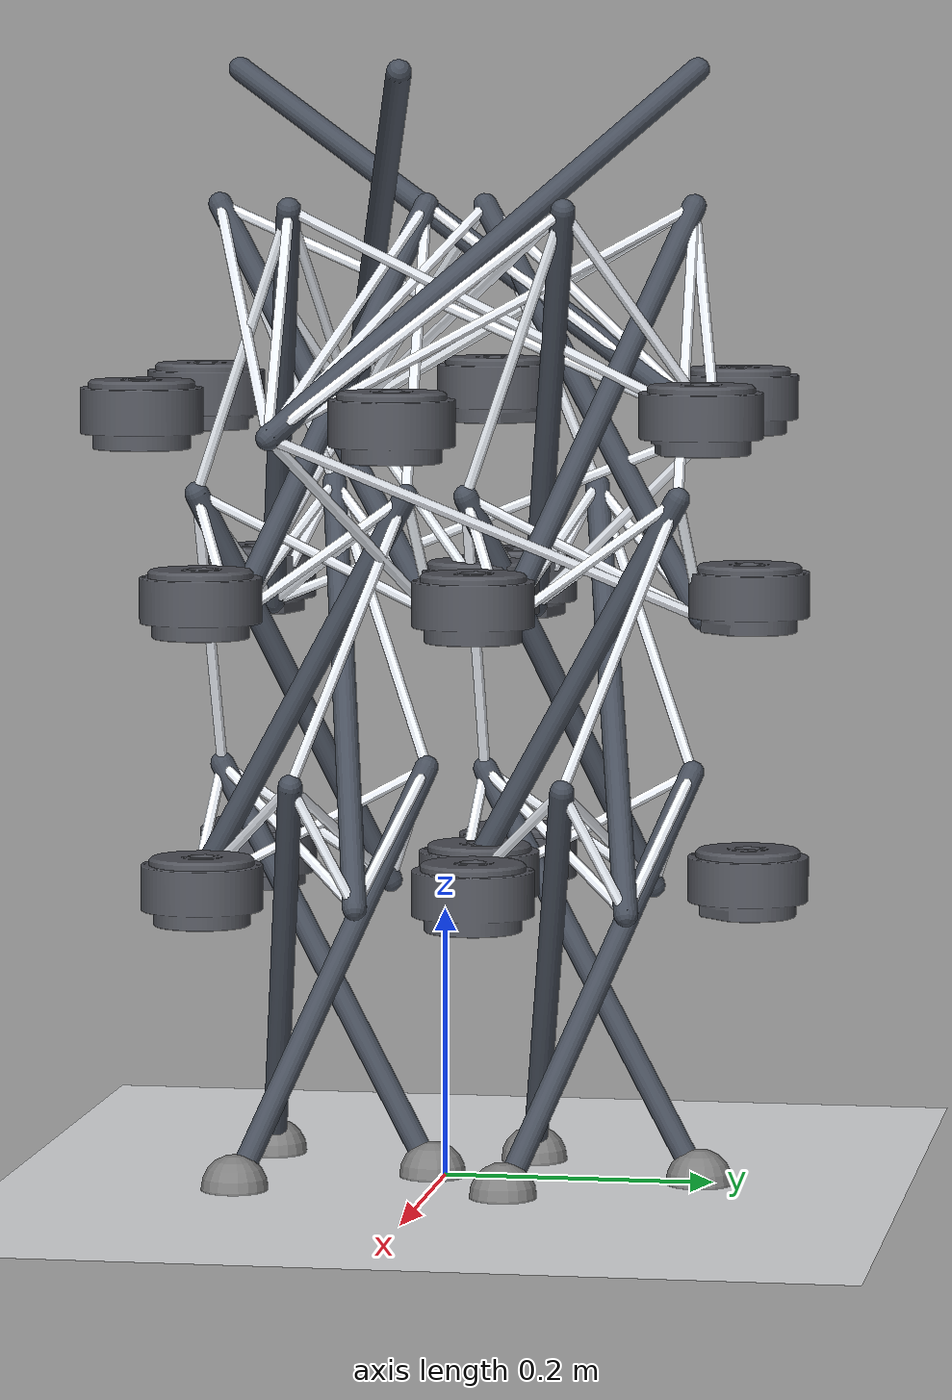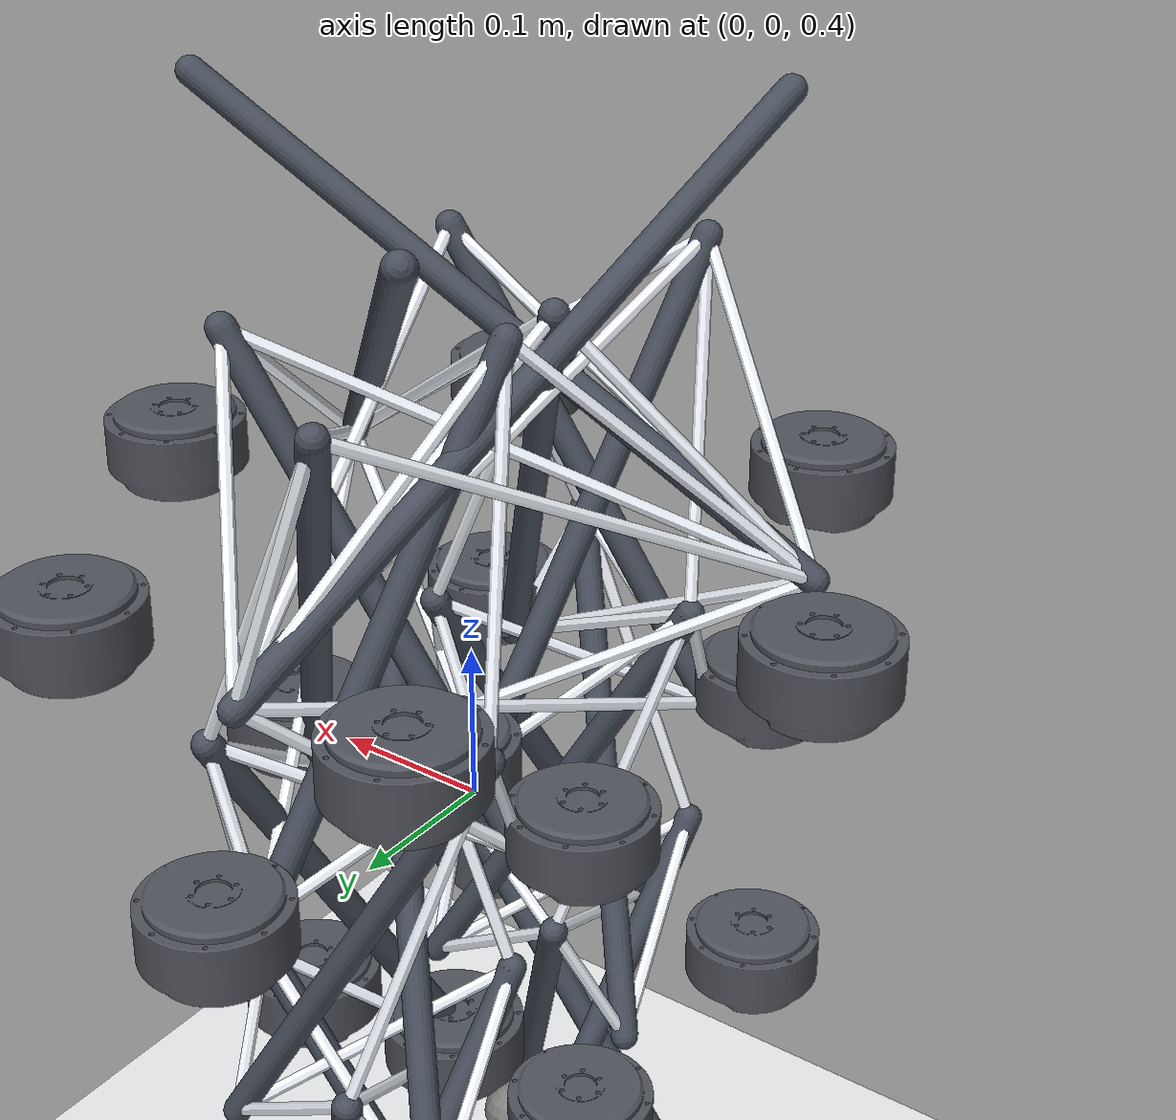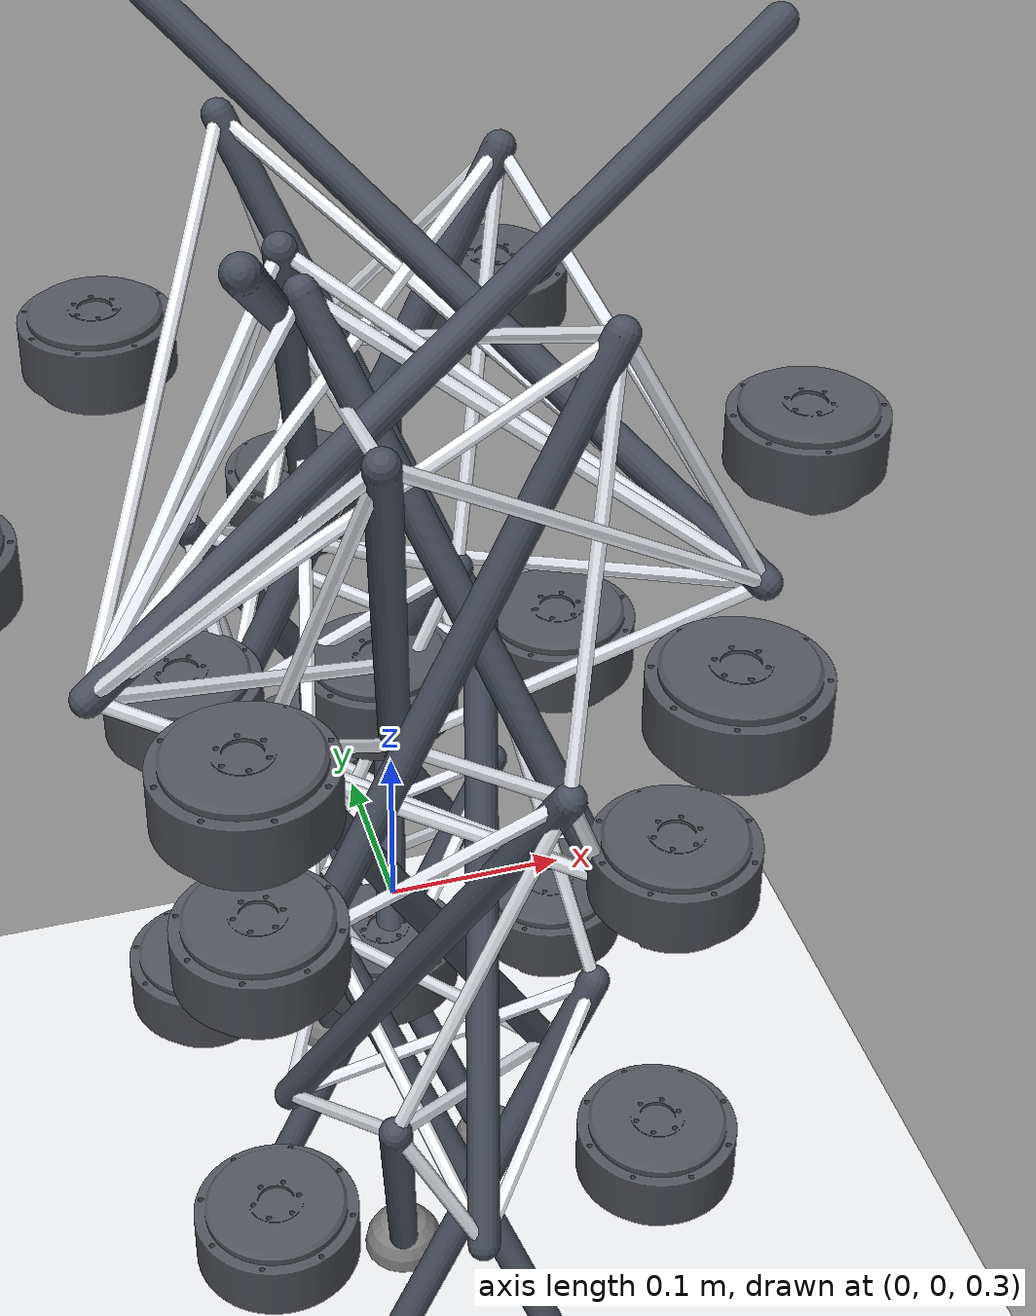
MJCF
<mujoco model="rigid_cage_walker">
  <compiler angle="radian" autolimits="true" meshdir="assets"/>
  <option timestep="0.0002" integrator="implicitfast" solver="Newton"
          iterations="50"/>
  <visual><global offwidth="1600" offheight="1200"/></visual>
  <asset>
    <mesh name="ak70" file="ak70_10.stl"/>
    <mesh name="ak60" file="ak60_6.stl"/>
    <texture name="grid" type="2d" builtin="checker" rgb1="0.88 0.89 0.90"
             rgb2="0.96 0.96 0.97" width="512" height="512"/>
    <material name="grid" texture="grid" texrepeat="10 10"/>
  </asset>
  <worldbody>
    <light pos="1.2 -1.2 2.6" dir="-0.4 0.4 -1" directional="true"/>
    <geom name="floor" type="plane" size="6 6 0.1" material="grid"
          contype="1" conaffinity="1" friction="1.2 0.01 0.001"/>

    <body name="foot_l" pos="-0.00000 0.10000 0.15000">
      <freejoint/>
            <geom type="capsule" size="0.009" mass="0.001" contype="0" conaffinity="0" rgba="0.28 0.31 0.36 1" fromto="0.00000 0.09000 -0.15000 -0.04527 -0.07778 0.15000"/>
      <geom type="capsule" size="0.009" mass="0.001" contype="0" conaffinity="0" rgba="0.28 0.31 0.36 1" fromto="-0.07794 -0.04500 -0.15000 0.09000 -0.00031 0.15000"/>
      <geom type="capsule" size="0.009" mass="0.001" contype="0" conaffinity="0" rgba="0.28 0.31 0.36 1" fromto="0.07794 -0.04500 -0.15000 -0.04473 0.07810 0.15000"/>
      <inertial pos="0.00000 0.00000 0.00000" mass="0.4000" fullinertia="0.004620 0.004620 0.003240 0.000000 0.000000 0.000000"/>
      <geom name="pad_foot_l_0" type="sphere" size="0.025" mass="0.04" contype="1" conaffinity="1" friction="1.2 0.01 0.001" pos="0.00000 0.09000 -0.15000"/>
      <geom name="pad_foot_l_1" type="sphere" size="0.025" mass="0.04" contype="1" conaffinity="1" friction="1.2 0.01 0.001" pos="-0.07794 -0.04500 -0.15000"/>
      <geom name="pad_foot_l_2" type="sphere" size="0.025" mass="0.04" contype="1" conaffinity="1" friction="1.2 0.01 0.001" pos="0.07794 -0.04500 -0.15000"/>
      <site name="foot_l_b0" pos="0.00000 0.09000 -0.15000" size="0.006"/>
      <site name="foot_l_b1" pos="-0.07794 -0.04500 -0.15000" size="0.006"/>
      <site name="foot_l_b2" pos="0.07794 -0.04500 -0.15000" size="0.006"/>
      <site name="foot_l_t0" pos="-0.04473 0.07810 0.15000" size="0.006"/>
      <site name="foot_l_t1" pos="-0.04527 -0.07778 0.15000" size="0.006"/>
      <site name="foot_l_t2" pos="0.09000 -0.00031 0.15000" size="0.006"/>
    </body>
    <body name="shank_l" pos="0.00000 0.10000 0.36000">
      <freejoint/>
            <geom type="capsule" size="0.009" mass="0.001" contype="0" conaffinity="0" rgba="0.28 0.31 0.36 1" fromto="-0.07794 0.04500 -0.15000 0.04473 -0.07810 0.15000"/>
      <geom type="capsule" size="0.009" mass="0.001" contype="0" conaffinity="0" rgba="0.28 0.31 0.36 1" fromto="-0.00000 -0.09000 -0.15000 0.04527 0.07778 0.15000"/>
      <geom type="capsule" size="0.009" mass="0.001" contype="0" conaffinity="0" rgba="0.28 0.31 0.36 1" fromto="0.07794 0.04500 -0.15000 -0.09000 0.00031 0.15000"/>
      <inertial pos="0.00000 0.00000 -0.12037" mass="3.2300" fullinertia="0.032230 0.032230 0.047835 -0.000000 0.000000 -0.000000"/>
      <geom type="mesh" mesh="ak70" mass="0" contype="0" conaffinity="0" rgba="0.32 0.33 0.36 1" pos="-0.10825 -0.06250 -0.13500" xyaxes="-0.50000 0.86603 -0.00000 -0.86603 -0.50000 -0.00000"/>
      <geom type="mesh" mesh="ak70" mass="0" contype="0" conaffinity="0" rgba="0.32 0.33 0.36 1" pos="-0.00000 0.12500 -0.13500" xyaxes="1.00000 0.00000 0.00000 -0.00000 1.00000 -0.00000"/>
      <geom type="mesh" mesh="ak70" mass="0" contype="0" conaffinity="0" rgba="0.32 0.33 0.36 1" pos="0.10825 -0.06250 -0.13500" xyaxes="-0.50000 -0.86603 -0.00000 0.86603 -0.50000 0.00000"/>
      <site name="shank_l_b0" pos="-0.07794 0.04500 -0.15000" size="0.006"/>
      <site name="shank_l_b1" pos="-0.00000 -0.09000 -0.15000" size="0.006"/>
      <site name="shank_l_b2" pos="0.07794 0.04500 -0.15000" size="0.006"/>
      <site name="shank_l_t0" pos="-0.09000 0.00031 0.15000" size="0.006"/>
      <site name="shank_l_t1" pos="0.04473 -0.07810 0.15000" size="0.006"/>
      <site name="shank_l_t2" pos="0.04527 0.07778 0.15000" size="0.006"/>
    </body>
    <body name="thigh_l" pos="0.00000 0.10000 0.57000">
      <freejoint/>
            <geom type="capsule" size="0.009" mass="0.001" contype="0" conaffinity="0" rgba="0.28 0.31 0.36 1" fromto="-0.07794 -0.04500 -0.15000 0.09000 -0.00031 0.15000"/>
      <geom type="capsule" size="0.009" mass="0.001" contype="0" conaffinity="0" rgba="0.28 0.31 0.36 1" fromto="0.07794 -0.04500 -0.15000 -0.04473 0.07810 0.15000"/>
      <geom type="capsule" size="0.009" mass="0.001" contype="0" conaffinity="0" rgba="0.28 0.31 0.36 1" fromto="0.00000 0.09000 -0.15000 -0.04527 -0.07778 0.15000"/>
      <inertial pos="0.00000 -0.00000 -0.11026" mass="1.9100" fullinertia="0.021440 0.021440 0.027210 -0.000000 0.000000 0.000000"/>
      <geom type="mesh" mesh="ak70" mass="0" contype="0" conaffinity="0" rgba="0.32 0.33 0.36 1" pos="-0.10825 -0.06250 -0.13500" xyaxes="-0.50000 0.86603 -0.00000 -0.86603 -0.50000 0.00000"/>
      <geom type="mesh" mesh="ak70" mass="0" contype="0" conaffinity="0" rgba="0.32 0.33 0.36 1" pos="-0.00000 0.12500 -0.13500" xyaxes="1.00000 0.00000 -0.00000 -0.00000 1.00000 -0.00000"/>
      <geom type="mesh" mesh="ak70" mass="0" contype="0" conaffinity="0" rgba="0.32 0.33 0.36 1" pos="0.10825 -0.06250 -0.13500" xyaxes="-0.50000 -0.86603 0.00000 0.86603 -0.50000 0.00000"/>
      <site name="thigh_l_b0" pos="-0.07794 -0.04500 -0.15000" size="0.006"/>
      <site name="thigh_l_b1" pos="0.07794 -0.04500 -0.15000" size="0.006"/>
      <site name="thigh_l_b2" pos="0.00000 0.09000 -0.15000" size="0.006"/>
      <site name="thigh_l_t0" pos="-0.04527 -0.07778 0.15000" size="0.006"/>
      <site name="thigh_l_t1" pos="0.09000 -0.00031 0.15000" size="0.006"/>
      <site name="thigh_l_t2" pos="-0.04473 0.07810 0.15000" size="0.006"/>
    </body>
    <body name="foot_r" pos="-0.00000 -0.10000 0.15000">
      <freejoint/>
            <geom type="capsule" size="0.009" mass="0.001" contype="0" conaffinity="0" rgba="0.28 0.31 0.36 1" fromto="0.00000 0.09000 -0.15000 -0.04527 -0.07778 0.15000"/>
      <geom type="capsule" size="0.009" mass="0.001" contype="0" conaffinity="0" rgba="0.28 0.31 0.36 1" fromto="-0.07794 -0.04500 -0.15000 0.09000 -0.00031 0.15000"/>
      <geom type="capsule" size="0.009" mass="0.001" contype="0" conaffinity="0" rgba="0.28 0.31 0.36 1" fromto="0.07794 -0.04500 -0.15000 -0.04473 0.07810 0.15000"/>
      <inertial pos="0.00000 0.00000 0.00000" mass="0.4000" fullinertia="0.004620 0.004620 0.003240 0.000000 0.000000 0.000000"/>
      <geom name="pad_foot_r_0" type="sphere" size="0.025" mass="0.04" contype="1" conaffinity="1" friction="1.2 0.01 0.001" pos="0.00000 0.09000 -0.15000"/>
      <geom name="pad_foot_r_1" type="sphere" size="0.025" mass="0.04" contype="1" conaffinity="1" friction="1.2 0.01 0.001" pos="-0.07794 -0.04500 -0.15000"/>
      <geom name="pad_foot_r_2" type="sphere" size="0.025" mass="0.04" contype="1" conaffinity="1" friction="1.2 0.01 0.001" pos="0.07794 -0.04500 -0.15000"/>
      <site name="foot_r_b0" pos="0.00000 0.09000 -0.15000" size="0.006"/>
      <site name="foot_r_b1" pos="-0.07794 -0.04500 -0.15000" size="0.006"/>
      <site name="foot_r_b2" pos="0.07794 -0.04500 -0.15000" size="0.006"/>
      <site name="foot_r_t0" pos="-0.04473 0.07810 0.15000" size="0.006"/>
      <site name="foot_r_t1" pos="-0.04527 -0.07778 0.15000" size="0.006"/>
      <site name="foot_r_t2" pos="0.09000 -0.00031 0.15000" size="0.006"/>
    </body>
    <body name="shank_r" pos="0.00000 -0.10000 0.36000">
      <freejoint/>
            <geom type="capsule" size="0.009" mass="0.001" contype="0" conaffinity="0" rgba="0.28 0.31 0.36 1" fromto="-0.07794 0.04500 -0.15000 0.04473 -0.07810 0.15000"/>
      <geom type="capsule" size="0.009" mass="0.001" contype="0" conaffinity="0" rgba="0.28 0.31 0.36 1" fromto="-0.00000 -0.09000 -0.15000 0.04527 0.07778 0.15000"/>
      <geom type="capsule" size="0.009" mass="0.001" contype="0" conaffinity="0" rgba="0.28 0.31 0.36 1" fromto="0.07794 0.04500 -0.15000 -0.09000 0.00031 0.15000"/>
      <inertial pos="0.00000 0.00000 -0.12037" mass="3.2300" fullinertia="0.032230 0.032230 0.047835 -0.000000 0.000000 0.000000"/>
      <geom type="mesh" mesh="ak70" mass="0" contype="0" conaffinity="0" rgba="0.32 0.33 0.36 1" pos="-0.10825 -0.06250 -0.13500" xyaxes="-0.50000 0.86603 -0.00000 -0.86603 -0.50000 -0.00000"/>
      <geom type="mesh" mesh="ak70" mass="0" contype="0" conaffinity="0" rgba="0.32 0.33 0.36 1" pos="-0.00000 0.12500 -0.13500" xyaxes="1.00000 0.00000 0.00000 -0.00000 1.00000 -0.00000"/>
      <geom type="mesh" mesh="ak70" mass="0" contype="0" conaffinity="0" rgba="0.32 0.33 0.36 1" pos="0.10825 -0.06250 -0.13500" xyaxes="-0.50000 -0.86603 -0.00000 0.86603 -0.50000 0.00000"/>
      <site name="shank_r_b0" pos="-0.07794 0.04500 -0.15000" size="0.006"/>
      <site name="shank_r_b1" pos="-0.00000 -0.09000 -0.15000" size="0.006"/>
      <site name="shank_r_b2" pos="0.07794 0.04500 -0.15000" size="0.006"/>
      <site name="shank_r_t0" pos="-0.09000 0.00031 0.15000" size="0.006"/>
      <site name="shank_r_t1" pos="0.04473 -0.07810 0.15000" size="0.006"/>
      <site name="shank_r_t2" pos="0.04527 0.07778 0.15000" size="0.006"/>
    </body>
    <body name="thigh_r" pos="0.00000 -0.10000 0.57000">
      <freejoint/>
            <geom type="capsule" size="0.009" mass="0.001" contype="0" conaffinity="0" rgba="0.28 0.31 0.36 1" fromto="-0.07794 -0.04500 -0.15000 0.09000 -0.00031 0.15000"/>
      <geom type="capsule" size="0.009" mass="0.001" contype="0" conaffinity="0" rgba="0.28 0.31 0.36 1" fromto="0.07794 -0.04500 -0.15000 -0.04473 0.07810 0.15000"/>
      <geom type="capsule" size="0.009" mass="0.001" contype="0" conaffinity="0" rgba="0.28 0.31 0.36 1" fromto="0.00000 0.09000 -0.15000 -0.04527 -0.07778 0.15000"/>
      <inertial pos="0.00000 0.00000 -0.11026" mass="1.9100" fullinertia="0.021440 0.021440 0.027210 -0.000000 0.000000 0.000000"/>
      <geom type="mesh" mesh="ak70" mass="0" contype="0" conaffinity="0" rgba="0.32 0.33 0.36 1" pos="-0.10825 -0.06250 -0.13500" xyaxes="-0.50000 0.86603 0.00000 -0.86603 -0.50000 0.00000"/>
      <geom type="mesh" mesh="ak70" mass="0" contype="0" conaffinity="0" rgba="0.32 0.33 0.36 1" pos="-0.00000 0.12500 -0.13500" xyaxes="1.00000 0.00000 -0.00000 -0.00000 1.00000 0.00000"/>
      <geom type="mesh" mesh="ak70" mass="0" contype="0" conaffinity="0" rgba="0.32 0.33 0.36 1" pos="0.10825 -0.06250 -0.13500" xyaxes="-0.50000 -0.86603 0.00000 0.86603 -0.50000 -0.00000"/>
      <site name="thigh_r_b0" pos="-0.07794 -0.04500 -0.15000" size="0.006"/>
      <site name="thigh_r_b1" pos="0.07794 -0.04500 -0.15000" size="0.006"/>
      <site name="thigh_r_b2" pos="0.00000 0.09000 -0.15000" size="0.006"/>
      <site name="thigh_r_t0" pos="-0.04527 -0.07778 0.15000" size="0.006"/>
      <site name="thigh_r_t1" pos="0.09000 -0.00031 0.15000" size="0.006"/>
      <site name="thigh_r_t2" pos="-0.04473 0.07810 0.15000" size="0.006"/>
    </body>
    <body name="pelvis" pos="-0.00000 -0.00000 0.69000">
      <freejoint/>
            <geom type="capsule" size="0.009" mass="0.001" contype="0" conaffinity="0" rgba="0.28 0.31 0.36 1" fromto="0.00000 0.20000 -0.13000 -0.10060 -0.17285 0.13000"/>
      <geom type="capsule" size="0.009" mass="0.001" contype="0" conaffinity="0" rgba="0.28 0.31 0.36 1" fromto="-0.17321 -0.10000 -0.13000 0.20000 -0.00070 0.13000"/>
      <geom type="capsule" size="0.009" mass="0.001" contype="0" conaffinity="0" rgba="0.28 0.31 0.36 1" fromto="0.17321 -0.10000 -0.13000 -0.09939 0.17355 0.13000"/>
      <inertial pos="-0.00000 -0.00000 -0.02265" mass="16.1200" fullinertia="0.453828 0.453828 0.692302 -0.000000 -0.000000 -0.000000"/>
      <geom type="mesh" mesh="ak70" mass="0" contype="0" conaffinity="0" rgba="0.32 0.33 0.36 1" pos="-0.11750 -0.20352 -0.11700" xyaxes="-0.86603 0.50000 0.00000 -0.50000 -0.86603 0.00000"/>
      <geom type="mesh" mesh="ak70" mass="0" contype="0" conaffinity="0" rgba="0.32 0.33 0.36 1" pos="-0.23500 -0.00000 -0.11700" xyaxes="-0.00000 1.00000 -0.00000 -1.00000 -0.00000 0.00000"/>
      <geom type="mesh" mesh="ak70" mass="0" contype="0" conaffinity="0" rgba="0.32 0.33 0.36 1" pos="-0.11750 0.20352 -0.11700" xyaxes="0.86603 0.50000 -0.00000 -0.50000 0.86603 -0.00000"/>
      <geom type="mesh" mesh="ak70" mass="0" contype="0" conaffinity="0" rgba="0.32 0.33 0.36 1" pos="0.11750 0.20352 -0.11700" xyaxes="0.86603 -0.50000 -0.00000 0.50000 0.86603 -0.00000"/>
      <geom type="mesh" mesh="ak70" mass="0" contype="0" conaffinity="0" rgba="0.32 0.33 0.36 1" pos="0.23500 0.00000 -0.11700" xyaxes="0.00000 -1.00000 0.00000 1.00000 0.00000 -0.00000"/>
      <geom type="mesh" mesh="ak70" mass="0" contype="0" conaffinity="0" rgba="0.32 0.33 0.36 1" pos="0.11750 -0.20352 -0.11700" xyaxes="-0.86603 -0.50000 0.00000 0.50000 -0.86603 0.00000"/>
      <site name="pelvis_b0" pos="0.00000 0.20000 -0.13000" size="0.006"/>
      <site name="pelvis_b1" pos="-0.17321 -0.10000 -0.13000" size="0.006"/>
      <site name="pelvis_b2" pos="0.17321 -0.10000 -0.13000" size="0.006"/>
      <site name="pelvis_t0" pos="-0.09939 0.17355 0.13000" size="0.006"/>
      <site name="pelvis_t1" pos="-0.10060 -0.17285 0.13000" size="0.006"/>
      <site name="pelvis_t2" pos="0.20000 -0.00070 0.13000" size="0.006"/>
    </body>
  </worldbody>
  <tendon>
    <spatial name="t0" width="0.004" stiffness="40000.0" damping="4.00" springlength="0 0.100896" rgba="0.95 0.97 1 1">
      <site site="foot_l_t0"/>
      <site site="shank_l_b0"/>
    </spatial>
    <spatial name="t1" width="0.004" stiffness="40000.0" damping="4.00" springlength="0 0.228475" rgba="0.95 0.97 1 1">
      <site site="foot_l_t0"/>
      <site site="shank_l_t0"/>
    </spatial>
    <spatial name="t2" width="0.004" stiffness="40000.0" damping="4.00" springlength="0 0.195515" rgba="0.95 0.97 1 1">
      <site site="foot_l_t0"/>
      <site site="shank_l_b1"/>
    </spatial>
    <spatial name="t3" width="0.004" stiffness="40000.0" damping="4.00" springlength="0 0.155086" rgba="0.95 0.97 1 1">
      <site site="foot_l_t0"/>
      <site site="shank_l_b2"/>
    </spatial>
    <spatial name="t4" width="0.004" stiffness="40000.0" damping="4.00" springlength="0 0.100827" rgba="0.95 0.97 1 1">
      <site site="foot_l_t1"/>
      <site site="shank_l_b1"/>
    </spatial>
    <spatial name="t5" width="0.004" stiffness="40000.0" damping="4.00" springlength="0 0.228473" rgba="0.95 0.97 1 1">
      <site site="foot_l_t1"/>
      <site site="shank_l_t1"/>
    </spatial>
    <spatial name="t6" width="0.004" stiffness="40000.0" damping="4.00" springlength="0 0.195494" rgba="0.95 0.97 1 1">
      <site site="foot_l_t1"/>
      <site site="shank_l_b2"/>
    </spatial>
    <spatial name="t7" width="0.004" stiffness="40000.0" damping="4.00" springlength="0 0.155137" rgba="0.95 0.97 1 1">
      <site site="foot_l_t1"/>
      <site site="shank_l_b0"/>
    </spatial>
    <spatial name="t8" width="0.004" stiffness="40000.0" damping="4.00" springlength="0 0.100783" rgba="0.95 0.97 1 1">
      <site site="foot_l_t2"/>
      <site site="shank_l_b2"/>
    </spatial>
    <spatial name="t9" width="0.004" stiffness="40000.0" damping="4.00" springlength="0 0.228471" rgba="0.95 0.97 1 1">
      <site site="foot_l_t2"/>
      <site site="shank_l_t2"/>
    </spatial>
    <spatial name="t10" width="0.004" stiffness="40000.0" damping="4.00" springlength="0 0.195533" rgba="0.95 0.97 1 1">
      <site site="foot_l_t2"/>
      <site site="shank_l_b0"/>
    </spatial>
    <spatial name="t11" width="0.004" stiffness="40000.0" damping="4.00" springlength="0 0.155089" rgba="0.95 0.97 1 1">
      <site site="foot_l_t2"/>
      <site site="shank_l_b1"/>
    </spatial>
    <spatial name="t12" width="0.004" stiffness="40000.0" damping="4.00" springlength="0 0.100964" rgba="0.95 0.97 1 1">
      <site site="shank_l_t0"/>
      <site site="thigh_l_b0"/>
    </spatial>
    <spatial name="t13" width="0.004" stiffness="40000.0" damping="4.00" springlength="0 0.228471" rgba="0.95 0.97 1 1">
      <site site="shank_l_t0"/>
      <site site="thigh_l_t0"/>
    </spatial>
    <spatial name="t14" width="0.004" stiffness="40000.0" damping="4.00" springlength="0 0.195574" rgba="0.95 0.97 1 1">
      <site site="shank_l_t0"/>
      <site site="thigh_l_b1"/>
    </spatial>
    <spatial name="t15" width="0.004" stiffness="40000.0" damping="4.00" springlength="0 0.155245" rgba="0.95 0.97 1 1">
      <site site="shank_l_t0"/>
      <site site="thigh_l_b2"/>
    </spatial>
    <spatial name="t16" width="0.004" stiffness="40000.0" damping="4.00" springlength="0 0.100985" rgba="0.95 0.97 1 1">
      <site site="shank_l_t1"/>
      <site site="thigh_l_b1"/>
    </spatial>
    <spatial name="t17" width="0.004" stiffness="40000.0" damping="4.00" springlength="0 0.228475" rgba="0.95 0.97 1 1">
      <site site="shank_l_t1"/>
      <site site="thigh_l_t1"/>
    </spatial>
    <spatial name="t18" width="0.004" stiffness="40000.0" damping="4.00" springlength="0 0.195604" rgba="0.95 0.97 1 1">
      <site site="shank_l_t1"/>
      <site site="thigh_l_b2"/>
    </spatial>
    <spatial name="t19" width="0.004" stiffness="40000.0" damping="4.00" springlength="0 0.155261" rgba="0.95 0.97 1 1">
      <site site="shank_l_t1"/>
      <site site="thigh_l_b0"/>
    </spatial>
    <spatial name="t20" width="0.004" stiffness="40000.0" damping="4.00" springlength="0 0.101025" rgba="0.95 0.97 1 1">
      <site site="shank_l_t2"/>
      <site site="thigh_l_b2"/>
    </spatial>
    <spatial name="t21" width="0.004" stiffness="40000.0" damping="4.00" springlength="0 0.228473" rgba="0.95 0.97 1 1">
      <site site="shank_l_t2"/>
      <site site="thigh_l_t2"/>
    </spatial>
    <spatial name="t22" width="0.004" stiffness="40000.0" damping="4.00" springlength="0 0.195606" rgba="0.95 0.97 1 1">
      <site site="shank_l_t2"/>
      <site site="thigh_l_b0"/>
    </spatial>
    <spatial name="t23" width="0.004" stiffness="40000.0" damping="4.00" springlength="0 0.155264" rgba="0.95 0.97 1 1">
      <site site="shank_l_t2"/>
      <site site="thigh_l_b1"/>
    </spatial>
    <spatial name="t24" width="0.004" stiffness="40000.0" damping="4.00" springlength="0 0.100750" rgba="0.95 0.97 1 1">
      <site site="foot_r_t0"/>
      <site site="shank_r_b0"/>
    </spatial>
    <spatial name="t25" width="0.004" stiffness="40000.0" damping="4.00" springlength="0 0.228475" rgba="0.95 0.97 1 1">
      <site site="foot_r_t0"/>
      <site site="shank_r_t0"/>
    </spatial>
    <spatial name="t26" width="0.004" stiffness="40000.0" damping="4.00" springlength="0 0.195515" rgba="0.95 0.97 1 1">
      <site site="foot_r_t0"/>
      <site site="shank_r_b1"/>
    </spatial>
    <spatial name="t27" width="0.004" stiffness="40000.0" damping="4.00" springlength="0 0.155109" rgba="0.95 0.97 1 1">
      <site site="foot_r_t0"/>
      <site site="shank_r_b2"/>
    </spatial>
    <spatial name="t28" width="0.004" stiffness="40000.0" damping="4.00" springlength="0 0.100857" rgba="0.95 0.97 1 1">
      <site site="foot_r_t1"/>
      <site site="shank_r_b1"/>
    </spatial>
    <spatial name="t29" width="0.004" stiffness="40000.0" damping="4.00" springlength="0 0.228473" rgba="0.95 0.97 1 1">
      <site site="foot_r_t1"/>
      <site site="shank_r_t1"/>
    </spatial>
    <spatial name="t30" width="0.004" stiffness="40000.0" damping="4.00" springlength="0 0.195523" rgba="0.95 0.97 1 1">
      <site site="foot_r_t1"/>
      <site site="shank_r_b2"/>
    </spatial>
    <spatial name="t31" width="0.004" stiffness="40000.0" damping="4.00" springlength="0 0.155066" rgba="0.95 0.97 1 1">
      <site site="foot_r_t1"/>
      <site site="shank_r_b0"/>
    </spatial>
    <spatial name="t32" width="0.004" stiffness="40000.0" damping="4.00" springlength="0 0.100871" rgba="0.95 0.97 1 1">
      <site site="foot_r_t2"/>
      <site site="shank_r_b2"/>
    </spatial>
    <spatial name="t33" width="0.004" stiffness="40000.0" damping="4.00" springlength="0 0.228471" rgba="0.95 0.97 1 1">
      <site site="foot_r_t2"/>
      <site site="shank_r_t2"/>
    </spatial>
    <spatial name="t34" width="0.004" stiffness="40000.0" damping="4.00" springlength="0 0.195489" rgba="0.95 0.97 1 1">
      <site site="foot_r_t2"/>
      <site site="shank_r_b0"/>
    </spatial>
    <spatial name="t35" width="0.004" stiffness="40000.0" damping="4.00" springlength="0 0.155134" rgba="0.95 0.97 1 1">
      <site site="foot_r_t2"/>
      <site site="shank_r_b1"/>
    </spatial>
    <spatial name="t36" width="0.004" stiffness="40000.0" damping="4.00" springlength="0 0.101014" rgba="0.95 0.97 1 1">
      <site site="shank_r_t0"/>
      <site site="thigh_r_b0"/>
    </spatial>
    <spatial name="t37" width="0.004" stiffness="40000.0" damping="4.00" springlength="0 0.228471" rgba="0.95 0.97 1 1">
      <site site="shank_r_t0"/>
      <site site="thigh_r_t0"/>
    </spatial>
    <spatial name="t38" width="0.004" stiffness="40000.0" damping="4.00" springlength="0 0.195611" rgba="0.95 0.97 1 1">
      <site site="shank_r_t0"/>
      <site site="thigh_r_b1"/>
    </spatial>
    <spatial name="t39" width="0.004" stiffness="40000.0" damping="4.00" springlength="0 0.155264" rgba="0.95 0.97 1 1">
      <site site="shank_r_t0"/>
      <site site="thigh_r_b2"/>
    </spatial>
    <spatial name="t40" width="0.004" stiffness="40000.0" damping="4.00" springlength="0 0.101004" rgba="0.95 0.97 1 1">
      <site site="shank_r_t1"/>
      <site site="thigh_r_b1"/>
    </spatial>
    <spatial name="t41" width="0.004" stiffness="40000.0" damping="4.00" springlength="0 0.228475" rgba="0.95 0.97 1 1">
      <site site="shank_r_t1"/>
      <site site="thigh_r_t1"/>
    </spatial>
    <spatial name="t42" width="0.004" stiffness="40000.0" damping="4.00" springlength="0 0.195588" rgba="0.95 0.97 1 1">
      <site site="shank_r_t1"/>
      <site site="thigh_r_b2"/>
    </spatial>
    <spatial name="t43" width="0.004" stiffness="40000.0" damping="4.00" springlength="0 0.155265" rgba="0.95 0.97 1 1">
      <site site="shank_r_t1"/>
      <site site="thigh_r_b0"/>
    </spatial>
    <spatial name="t44" width="0.004" stiffness="40000.0" damping="4.00" springlength="0 0.100929" rgba="0.95 0.97 1 1">
      <site site="shank_r_t2"/>
      <site site="thigh_r_b2"/>
    </spatial>
    <spatial name="t45" width="0.004" stiffness="40000.0" damping="4.00" springlength="0 0.228473" rgba="0.95 0.97 1 1">
      <site site="shank_r_t2"/>
      <site site="thigh_r_t2"/>
    </spatial>
    <spatial name="t46" width="0.004" stiffness="40000.0" damping="4.00" springlength="0 0.195571" rgba="0.95 0.97 1 1">
      <site site="shank_r_t2"/>
      <site site="thigh_r_b0"/>
    </spatial>
    <spatial name="t47" width="0.004" stiffness="40000.0" damping="4.00" springlength="0 0.155238" rgba="0.95 0.97 1 1">
      <site site="shank_r_t2"/>
      <site site="thigh_r_b1"/>
    </spatial>
    <spatial name="t48" width="0.004" stiffness="40000.0" damping="4.00" springlength="0 0.242885" rgba="0.95 0.97 1 1">
      <site site="pelvis_b0"/>
      <site site="thigh_l_t0"/>
    </spatial>
    <spatial name="t49" width="0.004" stiffness="40000.0" damping="4.00" springlength="0 0.216101" rgba="0.95 0.97 1 1">
      <site site="pelvis_b0"/>
      <site site="thigh_l_b0"/>
    </spatial>
    <spatial name="t50" width="0.004" stiffness="40000.0" damping="4.00" springlength="0 0.208701" rgba="0.95 0.97 1 1">
      <site site="pelvis_b0"/>
      <site site="thigh_l_t1"/>
    </spatial>
    <spatial name="t51" width="0.004" stiffness="40000.0" damping="4.00" springlength="0 0.166981" rgba="0.95 0.97 1 1">
      <site site="pelvis_b0"/>
      <site site="thigh_l_t2"/>
    </spatial>
    <spatial name="t52" width="0.004" stiffness="40000.0" damping="4.00" springlength="0 0.366972" rgba="0.95 0.97 1 1">
      <site site="pelvis_b1"/>
      <site site="thigh_l_t1"/>
    </spatial>
    <spatial name="t53" width="0.004" stiffness="40000.0" damping="4.00" springlength="0 0.326652" rgba="0.95 0.97 1 1">
      <site site="pelvis_b1"/>
      <site site="thigh_l_b1"/>
    </spatial>
    <spatial name="t54" width="0.004" stiffness="40000.0" damping="4.00" springlength="0 0.345442" rgba="0.95 0.97 1 1">
      <site site="pelvis_b1"/>
      <site site="thigh_l_t2"/>
    </spatial>
    <spatial name="t55" width="0.004" stiffness="40000.0" damping="4.00" springlength="0 0.238212" rgba="0.95 0.97 1 1">
      <site site="pelvis_b1"/>
      <site site="thigh_l_t0"/>
    </spatial>
    <spatial name="t56" width="0.004" stiffness="40000.0" damping="4.00" springlength="0 0.387739" rgba="0.95 0.97 1 1">
      <site site="pelvis_b2"/>
      <site site="thigh_l_t2"/>
    </spatial>
    <spatial name="t57" width="0.004" stiffness="40000.0" damping="4.00" springlength="0 0.365652" rgba="0.95 0.97 1 1">
      <site site="pelvis_b2"/>
      <site site="thigh_l_b2"/>
    </spatial>
    <spatial name="t58" width="0.004" stiffness="40000.0" damping="4.00" springlength="0 0.296803" rgba="0.95 0.97 1 1">
      <site site="pelvis_b2"/>
      <site site="thigh_l_t0"/>
    </spatial>
    <spatial name="t59" width="0.004" stiffness="40000.0" damping="4.00" springlength="0 0.268913" rgba="0.95 0.97 1 1">
      <site site="pelvis_b2"/>
      <site site="thigh_l_t1"/>
    </spatial>
    <spatial name="t60" width="0.004" stiffness="40000.0" damping="4.00" springlength="0 0.412755" rgba="0.95 0.97 1 1">
      <site site="pelvis_b0"/>
      <site site="thigh_r_t0"/>
    </spatial>
    <spatial name="t61" width="0.004" stiffness="40000.0" damping="4.00" springlength="0 0.380394" rgba="0.95 0.97 1 1">
      <site site="pelvis_b0"/>
      <site site="thigh_r_b0"/>
    </spatial>
    <spatial name="t62" width="0.004" stiffness="40000.0" damping="4.00" springlength="0 0.351939" rgba="0.95 0.97 1 1">
      <site site="pelvis_b0"/>
      <site site="thigh_r_t1"/>
    </spatial>
    <spatial name="t63" width="0.004" stiffness="40000.0" damping="4.00" springlength="0 0.277190" rgba="0.95 0.97 1 1">
      <site site="pelvis_b0"/>
      <site site="thigh_r_t2"/>
    </spatial>
    <spatial name="t64" width="0.004" stiffness="40000.0" damping="4.00" springlength="0 0.307630" rgba="0.95 0.97 1 1">
      <site site="pelvis_b1"/>
      <site site="thigh_r_t1"/>
    </spatial>
    <spatial name="t65" width="0.004" stiffness="40000.0" damping="4.00" springlength="0 0.291035" rgba="0.95 0.97 1 1">
      <site site="pelvis_b1"/>
      <site site="thigh_r_b1"/>
    </spatial>
    <spatial name="t66" width="0.004" stiffness="40000.0" damping="4.00" springlength="0 0.218996" rgba="0.95 0.97 1 1">
      <site site="pelvis_b1"/>
      <site site="thigh_r_t2"/>
    </spatial>
    <spatial name="t67" width="0.004" stiffness="40000.0" damping="4.00" springlength="0 0.218659" rgba="0.95 0.97 1 1">
      <site site="pelvis_b1"/>
      <site site="thigh_r_t0"/>
    </spatial>
    <spatial name="t68" width="0.004" stiffness="40000.0" damping="4.00" springlength="0 0.281020" rgba="0.95 0.97 1 1">
      <site site="pelvis_b2"/>
      <site site="thigh_r_t2"/>
    </spatial>
    <spatial name="t69" width="0.004" stiffness="40000.0" damping="4.00" springlength="0 0.240212" rgba="0.95 0.97 1 1">
      <site site="pelvis_b2"/>
      <site site="thigh_r_b2"/>
    </spatial>
    <spatial name="t70" width="0.004" stiffness="40000.0" damping="4.00" springlength="0 0.281383" rgba="0.95 0.97 1 1">
      <site site="pelvis_b2"/>
      <site site="thigh_r_t0"/>
    </spatial>
    <spatial name="t71" width="0.004" stiffness="40000.0" damping="4.00" springlength="0 0.179698" rgba="0.95 0.97 1 1">
      <site site="pelvis_b2"/>
      <site site="thigh_r_t1"/>
    </spatial>
  </tendon>
  <actuator>
    <motor name="a0" tendon="t0" gear="-1500.0" ctrlrange="0 1" ctrllimited="true"/>
    <motor name="a1" tendon="t1" gear="-1500.0" ctrlrange="0 1" ctrllimited="true"/>
    <motor name="a2" tendon="t2" gear="-1500.0" ctrlrange="0 1" ctrllimited="true"/>
    <motor name="a3" tendon="t3" gear="-1500.0" ctrlrange="0 1" ctrllimited="true"/>
    <motor name="a4" tendon="t4" gear="-1500.0" ctrlrange="0 1" ctrllimited="true"/>
    <motor name="a5" tendon="t5" gear="-1500.0" ctrlrange="0 1" ctrllimited="true"/>
    <motor name="a6" tendon="t6" gear="-1500.0" ctrlrange="0 1" ctrllimited="true"/>
    <motor name="a7" tendon="t7" gear="-1500.0" ctrlrange="0 1" ctrllimited="true"/>
    <motor name="a8" tendon="t8" gear="-1500.0" ctrlrange="0 1" ctrllimited="true"/>
    <motor name="a9" tendon="t9" gear="-1500.0" ctrlrange="0 1" ctrllimited="true"/>
    <motor name="a10" tendon="t10" gear="-1500.0" ctrlrange="0 1" ctrllimited="true"/>
    <motor name="a11" tendon="t11" gear="-1500.0" ctrlrange="0 1" ctrllimited="true"/>
    <motor name="a12" tendon="t12" gear="-1500.0" ctrlrange="0 1" ctrllimited="true"/>
    <motor name="a13" tendon="t13" gear="-1500.0" ctrlrange="0 1" ctrllimited="true"/>
    <motor name="a14" tendon="t14" gear="-1500.0" ctrlrange="0 1" ctrllimited="true"/>
    <motor name="a15" tendon="t15" gear="-1500.0" ctrlrange="0 1" ctrllimited="true"/>
    <motor name="a16" tendon="t16" gear="-1500.0" ctrlrange="0 1" ctrllimited="true"/>
    <motor name="a17" tendon="t17" gear="-1500.0" ctrlrange="0 1" ctrllimited="true"/>
    <motor name="a18" tendon="t18" gear="-1500.0" ctrlrange="0 1" ctrllimited="true"/>
    <motor name="a19" tendon="t19" gear="-1500.0" ctrlrange="0 1" ctrllimited="true"/>
    <motor name="a20" tendon="t20" gear="-1500.0" ctrlrange="0 1" ctrllimited="true"/>
    <motor name="a21" tendon="t21" gear="-1500.0" ctrlrange="0 1" ctrllimited="true"/>
    <motor name="a22" tendon="t22" gear="-1500.0" ctrlrange="0 1" ctrllimited="true"/>
    <motor name="a23" tendon="t23" gear="-1500.0" ctrlrange="0 1" ctrllimited="true"/>
    <motor name="a24" tendon="t24" gear="-1500.0" ctrlrange="0 1" ctrllimited="true"/>
    <motor name="a25" tendon="t25" gear="-1500.0" ctrlrange="0 1" ctrllimited="true"/>
    <motor name="a26" tendon="t26" gear="-1500.0" ctrlrange="0 1" ctrllimited="true"/>
    <motor name="a27" tendon="t27" gear="-1500.0" ctrlrange="0 1" ctrllimited="true"/>
    <motor name="a28" tendon="t28" gear="-1500.0" ctrlrange="0 1" ctrllimited="true"/>
    <motor name="a29" tendon="t29" gear="-1500.0" ctrlrange="0 1" ctrllimited="true"/>
    <motor name="a30" tendon="t30" gear="-1500.0" ctrlrange="0 1" ctrllimited="true"/>
    <motor name="a31" tendon="t31" gear="-1500.0" ctrlrange="0 1" ctrllimited="true"/>
    <motor name="a32" tendon="t32" gear="-1500.0" ctrlrange="0 1" ctrllimited="true"/>
    <motor name="a33" tendon="t33" gear="-1500.0" ctrlrange="0 1" ctrllimited="true"/>
    <motor name="a34" tendon="t34" gear="-1500.0" ctrlrange="0 1" ctrllimited="true"/>
    <motor name="a35" tendon="t35" gear="-1500.0" ctrlrange="0 1" ctrllimited="true"/>
    <motor name="a36" tendon="t36" gear="-1500.0" ctrlrange="0 1" ctrllimited="true"/>
    <motor name="a37" tendon="t37" gear="-1500.0" ctrlrange="0 1" ctrllimited="true"/>
    <motor name="a38" tendon="t38" gear="-1500.0" ctrlrange="0 1" ctrllimited="true"/>
    <motor name="a39" tendon="t39" gear="-1500.0" ctrlrange="0 1" ctrllimited="true"/>
    <motor name="a40" tendon="t40" gear="-1500.0" ctrlrange="0 1" ctrllimited="true"/>
    <motor name="a41" tendon="t41" gear="-1500.0" ctrlrange="0 1" ctrllimited="true"/>
    <motor name="a42" tendon="t42" gear="-1500.0" ctrlrange="0 1" ctrllimited="true"/>
    <motor name="a43" tendon="t43" gear="-1500.0" ctrlrange="0 1" ctrllimited="true"/>
    <motor name="a44" tendon="t44" gear="-1500.0" ctrlrange="0 1" ctrllimited="true"/>
    <motor name="a45" tendon="t45" gear="-1500.0" ctrlrange="0 1" ctrllimited="true"/>
    <motor name="a46" tendon="t46" gear="-1500.0" ctrlrange="0 1" ctrllimited="true"/>
    <motor name="a47" tendon="t47" gear="-1500.0" ctrlrange="0 1" ctrllimited="true"/>
    <motor name="a48" tendon="t48" gear="-1500.0" ctrlrange="0 1" ctrllimited="true"/>
    <motor name="a49" tendon="t49" gear="-1500.0" ctrlrange="0 1" ctrllimited="true"/>
    <motor name="a50" tendon="t50" gear="-1500.0" ctrlrange="0 1" ctrllimited="true"/>
    <motor name="a51" tendon="t51" gear="-1500.0" ctrlrange="0 1" ctrllimited="true"/>
    <motor name="a52" tendon="t52" gear="-1500.0" ctrlrange="0 1" ctrllimited="true"/>
    <motor name="a53" tendon="t53" gear="-1500.0" ctrlrange="0 1" ctrllimited="true"/>
    <motor name="a54" tendon="t54" gear="-1500.0" ctrlrange="0 1" ctrllimited="true"/>
    <motor name="a55" tendon="t55" gear="-1500.0" ctrlrange="0 1" ctrllimited="true"/>
    <motor name="a56" tendon="t56" gear="-1500.0" ctrlrange="0 1" ctrllimited="true"/>
    <motor name="a57" tendon="t57" gear="-1500.0" ctrlrange="0 1" ctrllimited="true"/>
    <motor name="a58" tendon="t58" gear="-1500.0" ctrlrange="0 1" ctrllimited="true"/>
    <motor name="a59" tendon="t59" gear="-1500.0" ctrlrange="0 1" ctrllimited="true"/>
    <motor name="a60" tendon="t60" gear="-1500.0" ctrlrange="0 1" ctrllimited="true"/>
    <motor name="a61" tendon="t61" gear="-1500.0" ctrlrange="0 1" ctrllimited="true"/>
    <motor name="a62" tendon="t62" gear="-1500.0" ctrlrange="0 1" ctrllimited="true"/>
    <motor name="a63" tendon="t63" gear="-1500.0" ctrlrange="0 1" ctrllimited="true"/>
    <motor name="a64" tendon="t64" gear="-1500.0" ctrlrange="0 1" ctrllimited="true"/>
    <motor name="a65" tendon="t65" gear="-1500.0" ctrlrange="0 1" ctrllimited="true"/>
    <motor name="a66" tendon="t66" gear="-1500.0" ctrlrange="0 1" ctrllimited="true"/>
    <motor name="a67" tendon="t67" gear="-1500.0" ctrlrange="0 1" ctrllimited="true"/>
    <motor name="a68" tendon="t68" gear="-1500.0" ctrlrange="0 1" ctrllimited="true"/>
    <motor name="a69" tendon="t69" gear="-1500.0" ctrlrange="0 1" ctrllimited="true"/>
    <motor name="a70" tendon="t70" gear="-1500.0" ctrlrange="0 1" ctrllimited="true"/>
    <motor name="a71" tendon="t71" gear="-1500.0" ctrlrange="0 1" ctrllimited="true"/>
  </actuator>
</mujoco>
